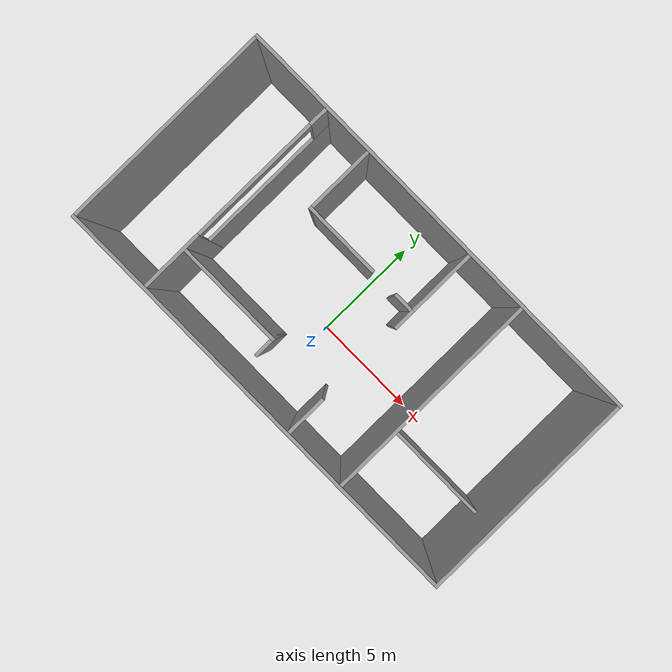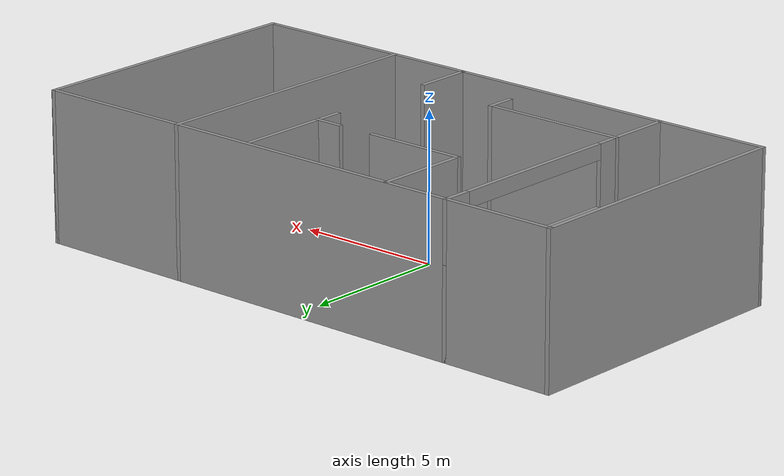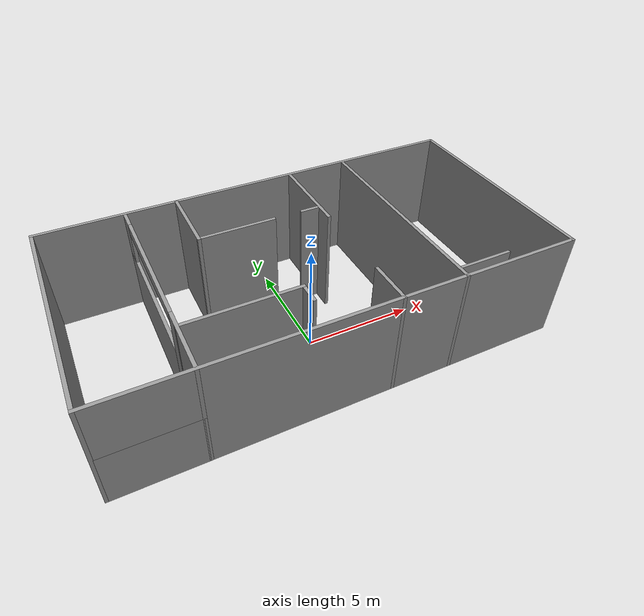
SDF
<?xml version='1.0'?>
<sdf version='1.6'>
  <model name='Plano'>
    <pose frame=''>0.110034 1.174 0 0 -0 0</pose>
    <link name='Wall_103'>
      <collision name='Wall_103_Collision'>
        <geometry>
          <box>
            <size>20 0.15 5</size>
          </box>
        </geometry>
        <pose frame=''>0 0 2.5 0 -0 0</pose>
      </collision>
      <visual name='Wall_103_Visual'>
        <pose frame=''>0 0 2.5 0 -0 0</pose>
        <geometry>
          <box>
            <size>20 0.15 5</size>
          </box>
        </geometry>
        <material>
          <script>
            <uri>file://media/materials/scripts/gazebo.material</uri>
            <name>Gazebo/Grey</name>
          </script>
          <ambient>1 1 1 1</ambient>
        </material>
        <meta>
          <layer>0</layer>
        </meta>
      </visual>
      <pose frame=''>-3.4e-05 4.925 0 0 -0 0</pose>
    </link>
    <link name='Wall_105'>
      <collision name='Wall_105_Collision'>
        <geometry>
          <box>
            <size>9.999 0.15 5</size>
          </box>
        </geometry>
        <pose frame=''>0 0 2.5 0 -0 0</pose>
      </collision>
      <visual name='Wall_105_Visual'>
        <pose frame=''>0 0 2.5 0 -0 0</pose>
        <geometry>
          <box>
            <size>9.999 0.15 5</size>
          </box>
        </geometry>
        <material>
          <script>
            <uri>file://media/materials/scripts/gazebo.material</uri>
            <name>Gazebo/Grey</name>
          </script>
          <ambient>1 1 1 1</ambient>
        </material>
        <meta>
          <layer>0</layer>
        </meta>
      </visual>
      <pose frame=''>9.92497 0.000501 0 0 0 -1.5708</pose>
    </link>
    <link name='Wall_106'>
      <collision name='Wall_106_Collision'>
        <geometry>
          <box>
            <size>20 0.15 5</size>
          </box>
        </geometry>
        <pose frame=''>0 0 2.5 0 -0 0</pose>
      </collision>
      <visual name='Wall_106_Visual'>
        <pose frame=''>0 0 2.5 0 -0 0</pose>
        <geometry>
          <box>
            <size>20 0.15 5</size>
          </box>
        </geometry>
        <material>
          <script>
            <uri>file://media/materials/scripts/gazebo.material</uri>
            <name>Gazebo/Grey</name>
          </script>
          <ambient>1 1 1 1</ambient>
        </material>
        <meta>
          <layer>0</layer>
        </meta>
      </visual>
      <pose frame=''>-3.4e-05 -4.924 0 0 -0 3.14159</pose>
    </link>
    <link name='Wall_107'>
      <collision name='Wall_107_Collision'>
        <geometry>
          <box>
            <size>9.99903 0.15 5</size>
          </box>
        </geometry>
        <pose frame=''>0 0 2.5 0 -0 0</pose>
      </collision>
      <visual name='Wall_107_Visual'>
        <pose frame=''>0 0 2.5 0 -0 0</pose>
        <geometry>
          <box>
            <size>9.99903 0.15 5</size>
          </box>
        </geometry>
        <material>
          <script>
            <uri>file://media/materials/scripts/gazebo.material</uri>
            <name>Gazebo/Grey</name>
          </script>
          <ambient>1 1 1 1</ambient>
        </material>
        <meta>
          <layer>0</layer>
        </meta>
      </visual>
      <pose frame=''>-9.92503 0.000501 0 0 -0 1.5708</pose>
    </link>
    <link name='Wall_113'>
      <collision name='Wall_113_Collision'>
        <geometry>
          <box>
            <size>4 0.15 2.5</size>
          </box>
        </geometry>
        <pose frame=''>0 0 1.25 0 -0 0</pose>
      </collision>
      <visual name='Wall_113_Visual'>
        <pose frame=''>0 0 1.25 0 -0 0</pose>
        <geometry>
          <box>
            <size>4 0.15 2.5</size>
          </box>
        </geometry>
        <material>
          <script>
            <uri>file://media/materials/scripts/gazebo.material</uri>
            <name>Gazebo/Grey</name>
          </script>
          <ambient>1 1 1 1</ambient>
        </material>
        <meta>
          <layer>0</layer>
        </meta>
      </visual>
      <pose frame=''>-8.00003 -4.9245 0 0 0 -0.00026</pose>
    </link>
    <link name='Wall_114'>
      <pose frame=''>-6.07503 1e-06 0 0 -0 1.5708</pose>
      <visual name='Wall_114_Visual_0'>
        <pose frame=''>-3.50091 0 2.5 0 -0 0</pose>
        <geometry>
          <box>
            <size>2.99817 0.15 5</size>
          </box>
        </geometry>
        <material>
          <script>
            <uri>file://media/materials/scripts/gazebo.material</uri>
            <name>Gazebo/Grey</name>
          </script>
          <ambient>1 1 1 1</ambient>
        </material>
        <meta>
          <layer>0</layer>
        </meta>
      </visual>
      <collision name='Wall_114_Collision_0'>
        <geometry>
          <box>
            <size>2.99817 0.15 5</size>
          </box>
        </geometry>
        <pose frame=''>-3.50091 0 2.5 0 -0 0</pose>
      </collision>
      <visual name='Wall_114_Visual_1'>
        <pose frame=''>1.49909 0 1.5 0 -0 0</pose>
        <geometry>
          <box>
            <size>7.00183 0.15 3</size>
          </box>
        </geometry>
        <material>
          <script>
            <uri>file://media/materials/scripts/gazebo.material</uri>
            <name>Gazebo/Grey</name>
          </script>
          <ambient>1 1 1 1</ambient>
        </material>
        <meta>
          <layer>0</layer>
        </meta>
      </visual>
      <collision name='Wall_114_Collision_1'>
        <geometry>
          <box>
            <size>7.00183 0.15 3</size>
          </box>
        </geometry>
        <pose frame=''>1.49909 0 1.5 0 -0 0</pose>
      </collision>
      <visual name='Wall_114_Visual_2'>
        <pose frame=''>4.49909 0 4 0 -0 0</pose>
        <geometry>
          <box>
            <size>1.00183 0.15 2</size>
          </box>
        </geometry>
        <material>
          <script>
            <uri>file://media/materials/scripts/gazebo.material</uri>
            <name>Gazebo/Grey</name>
          </script>
          <ambient>1 1 1 1</ambient>
        </material>
        <meta>
          <layer>0</layer>
        </meta>
      </visual>
      <collision name='Wall_114_Collision_2'>
        <geometry>
          <box>
            <size>1.00183 0.15 2</size>
          </box>
        </geometry>
        <pose frame=''>4.49909 0 4 0 -0 0</pose>
      </collision>
      <visual name='Wall_114_Visual_3'>
        <pose frame=''>0.998172 0 4.75 0 -0 0</pose>
        <geometry>
          <box>
            <size>6 0.15 0.5</size>
          </box>
        </geometry>
        <material>
          <script>
            <uri>file://media/materials/scripts/gazebo.material</uri>
            <name>Gazebo/Grey</name>
          </script>
          <ambient>1 1 1 1</ambient>
        </material>
        <meta>
          <layer>0</layer>
        </meta>
      </visual>
      <collision name='Wall_114_Collision_3'>
        <geometry>
          <box>
            <size>6 0.15 0.5</size>
          </box>
        </geometry>
        <pose frame=''>0.998172 0 4.75 0 -0 0</pose>
      </collision>
    </link>
    <link name='Wall_117'>
      <collision name='Wall_117_Collision'>
        <geometry>
          <box>
            <size>5 0.15 5</size>
          </box>
        </geometry>
        <pose frame=''>0 0 2.5 0 -0 0</pose>
      </collision>
      <visual name='Wall_117_Visual'>
        <pose frame=''>0 0 2.5 0 -0 0</pose>
        <geometry>
          <box>
            <size>5 0.15 5</size>
          </box>
        </geometry>
        <material>
          <script>
            <uri>file://media/materials/scripts/gazebo.material</uri>
            <name>Gazebo/Grey</name>
          </script>
          <ambient>1 1 1 1</ambient>
        </material>
        <meta>
          <layer>0</layer>
        </meta>
      </visual>
      <pose frame=''>-3.65003 -2.775 0 0 -0 0</pose>
    </link>
    <link name='Wall_118'>
      <collision name='Wall_118_Collision'>
        <geometry>
          <box>
            <size>1 0.15 5</size>
          </box>
        </geometry>
        <pose frame=''>0 0 2.5 0 -0 0</pose>
      </collision>
      <visual name='Wall_118_Visual'>
        <pose frame=''>0 0 2.5 0 -0 0</pose>
        <geometry>
          <box>
            <size>1 0.15 5</size>
          </box>
        </geometry>
        <material>
          <script>
            <uri>file://media/materials/scripts/gazebo.material</uri>
            <name>Gazebo/Grey</name>
          </script>
          <ambient>1 1 1 1</ambient>
        </material>
        <meta>
          <layer>0</layer>
        </meta>
      </visual>
      <pose frame=''>-1.22503 -3.2 0 0 0 -1.5708</pose>
    </link>
    <link name='Wall_121'>
      <collision name='Wall_121_Collision'>
        <geometry>
          <box>
            <size>2 0.15 5</size>
          </box>
        </geometry>
        <pose frame=''>0 0 2.5 0 -0 0</pose>
      </collision>
      <visual name='Wall_121_Visual'>
        <pose frame=''>0 0 2.5 0 -0 0</pose>
        <geometry>
          <box>
            <size>2 0.15 5</size>
          </box>
        </geometry>
        <material>
          <script>
            <uri>file://media/materials/scripts/gazebo.material</uri>
            <name>Gazebo/Grey</name>
          </script>
          <ambient>1 1 1 1</ambient>
        </material>
        <meta>
          <layer>0</layer>
        </meta>
      </visual>
      <pose frame=''>1.77497 -4 0 0 -0 1.5708</pose>
    </link>
    <link name='Wall_123'>
      <collision name='Wall_123_Collision'>
        <geometry>
          <box>
            <size>4 0.15 5</size>
          </box>
        </geometry>
        <pose frame=''>0 0 2.5 0 -0 0</pose>
      </collision>
      <visual name='Wall_123_Visual'>
        <pose frame=''>0 0 2.5 0 -0 0</pose>
        <geometry>
          <box>
            <size>4 0.15 5</size>
          </box>
        </geometry>
        <material>
          <script>
            <uri>file://media/materials/scripts/gazebo.material</uri>
            <name>Gazebo/Grey</name>
          </script>
          <ambient>1 1 1 1</ambient>
        </material>
        <meta>
          <layer>0</layer>
        </meta>
      </visual>
      <pose frame=''>1.77497 2.85 0 0 0 -1.5708</pose>
    </link>
    <link name='Wall_124'>
      <collision name='Wall_124_Collision'>
        <geometry>
          <box>
            <size>1 0.15 2.5</size>
          </box>
        </geometry>
        <pose frame=''>0 0 1.25 0 -0 0</pose>
      </collision>
      <visual name='Wall_124_Visual'>
        <pose frame=''>0 0 1.25 0 -0 0</pose>
        <geometry>
          <box>
            <size>1 0.15 2.5</size>
          </box>
        </geometry>
        <material>
          <script>
            <uri>file://media/materials/scripts/gazebo.material</uri>
            <name>Gazebo/Grey</name>
          </script>
          <ambient>1 1 1 1</ambient>
        </material>
        <meta>
          <layer>0</layer>
        </meta>
      </visual>
      <pose frame=''>1.77497 1.35 0 0 -0 1.5708</pose>
    </link>
    <link name='Wall_125'>
      <collision name='Wall_125_Collision'>
        <geometry>
          <box>
            <size>1 0.15 5</size>
          </box>
        </geometry>
        <pose frame=''>0 0 2.5 0 -0 0</pose>
      </collision>
      <visual name='Wall_125_Visual'>
        <pose frame=''>0 0 2.5 0 -0 0</pose>
        <geometry>
          <box>
            <size>1 0.15 5</size>
          </box>
        </geometry>
        <material>
          <script>
            <uri>file://media/materials/scripts/gazebo.material</uri>
            <name>Gazebo/Grey</name>
          </script>
          <ambient>1 1 1 1</ambient>
        </material>
        <meta>
          <layer>0</layer>
        </meta>
      </visual>
      <pose frame=''>1.34997 1.775 0 0 -0 3.14159</pose>
    </link>
    <link name='Wall_127'>
      <collision name='Wall_127_Collision'>
        <geometry>
          <box>
            <size>3.5 0.15 5</size>
          </box>
        </geometry>
        <pose frame=''>0 0 2.5 0 -0 0</pose>
      </collision>
      <visual name='Wall_127_Visual'>
        <pose frame=''>0 0 2.5 0 -0 0</pose>
        <geometry>
          <box>
            <size>3.5 0.15 5</size>
          </box>
        </geometry>
        <material>
          <script>
            <uri>file://media/materials/scripts/gazebo.material</uri>
            <name>Gazebo/Grey</name>
          </script>
          <ambient>1 1 1 1</ambient>
        </material>
        <meta>
          <layer>0</layer>
        </meta>
      </visual>
      <pose frame=''>-2.10003 1.775 0 0 -0 3.14159</pose>
    </link>
    <link name='Wall_128'>
      <collision name='Wall_128_Collision'>
        <geometry>
          <box>
            <size>3.25 0.15 5</size>
          </box>
        </geometry>
        <pose frame=''>0 0 2.5 0 -0 0</pose>
      </collision>
      <visual name='Wall_128_Visual'>
        <pose frame=''>0 0 2.5 0 -0 0</pose>
        <geometry>
          <box>
            <size>3.25 0.15 5</size>
          </box>
        </geometry>
        <material>
          <script>
            <uri>file://media/materials/scripts/gazebo.material</uri>
            <name>Gazebo/Grey</name>
          </script>
          <ambient>1 1 1 1</ambient>
        </material>
        <meta>
          <layer>0</layer>
        </meta>
      </visual>
      <pose frame=''>-3.77503 3.325 0 0 -0 1.5708</pose>
    </link>
    <link name='Wall_143'>
      <collision name='Wall_143_Collision'>
        <geometry>
          <box>
            <size>10 0.15 5</size>
          </box>
        </geometry>
        <pose frame=''>0 0 2.5 0 -0 0</pose>
      </collision>
      <visual name='Wall_143_Visual'>
        <pose frame=''>0 0 2.5 0 -0 0</pose>
        <geometry>
          <box>
            <size>10 0.15 5</size>
          </box>
        </geometry>
        <material>
          <script>
            <uri>file://media/materials/scripts/gazebo.material</uri>
            <name>Gazebo/Grey</name>
          </script>
          <ambient>1 1 1 1</ambient>
        </material>
        <meta>
          <layer>0</layer>
        </meta>
      </visual>
      <pose frame=''>4.62497 1e-06 0 0 -0 1.5708</pose>
    </link>
    <link name='Wall_145'>
      <pose frame=''>4.62505 -0.600147 0 0 0 -1.5708</pose>
      <visual name='Wall_145_Visual_0'>
        <pose frame=''>0 0 1.25 0 -0 0</pose>
        <geometry>
          <box>
            <size>1.5 0.15 2.5</size>
          </box>
        </geometry>
        <material>
          <script>
            <uri>file://media/materials/scripts/gazebo.material</uri>
            <name>Gazebo/Grey</name>
          </script>
          <ambient>1 1 1 1</ambient>
        </material>
        <meta>
          <layer>0</layer>
        </meta>
      </visual>
      <collision name='Wall_145_Collision_0'>
        <geometry>
          <box>
            <size>1.5 0.15 2.5</size>
          </box>
        </geometry>
        <pose frame=''>0 0 1.25 0 -0 0</pose>
      </collision>
      <visual name='Wall_145_Visual_1'>
        <pose frame=''>0.749452 0 1.25 0 -0 0</pose>
        <geometry>
          <box>
            <size>0.001095 0.15 2.5</size>
          </box>
        </geometry>
        <material>
          <script>
            <uri>file://media/materials/scripts/gazebo.material</uri>
            <name>Gazebo/Grey</name>
          </script>
          <ambient>1 1 1 1</ambient>
        </material>
        <meta>
          <layer>0</layer>
        </meta>
      </visual>
      <collision name='Wall_145_Collision_1'>
        <geometry>
          <box>
            <size>0.001095 0.15 2.5</size>
          </box>
        </geometry>
        <pose frame=''>0.749452 0 1.25 0 -0 0</pose>
      </collision>
    </link>
    <link name='Wall_152'>
      <collision name='Wall_152_Collision'>
        <geometry>
          <box>
            <size>5.45 0.15 2.5</size>
          </box>
        </geometry>
        <pose frame=''>0 0 1.25 0 -0 0</pose>
      </collision>
      <visual name='Wall_152_Visual'>
        <pose frame=''>0 0 1.25 0 -0 0</pose>
        <geometry>
          <box>
            <size>5.45 0.15 2.5</size>
          </box>
        </geometry>
        <material>
          <script>
            <uri>file://media/materials/scripts/gazebo.material</uri>
            <name>Gazebo/Grey</name>
          </script>
          <ambient>1 1 1 1</ambient>
        </material>
        <meta>
          <layer>0</layer>
        </meta>
      </visual>
      <pose frame=''>7.27505 -2.07515 0 0 -0 3.14159</pose>
    </link>
    <static>1</static>
  </model>
</sdf>
